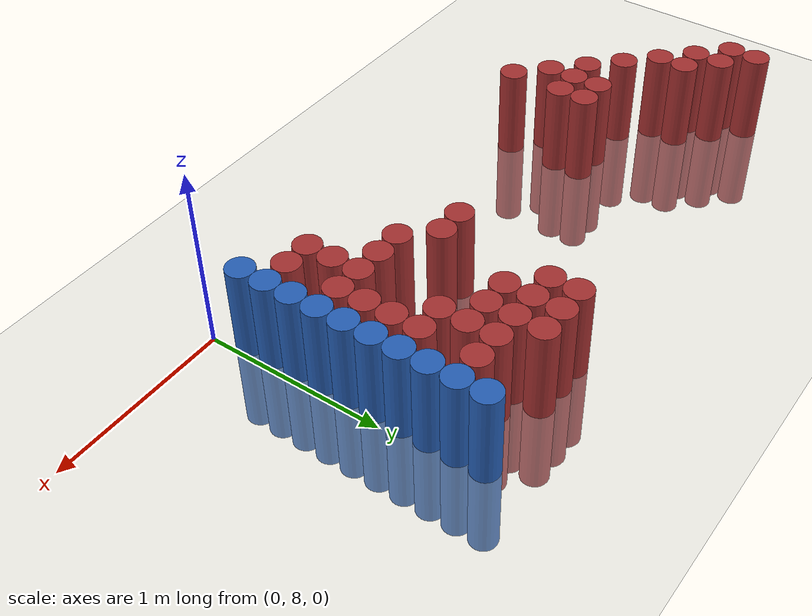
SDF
<sdf version="1.6">
 <world name="default">
  <model name="ground_plane">
   <static>1</static>
   <link name="link">
    <collision name="collision">
     <geometry><plane><normal>0 0 1</normal><size>100 100</size></plane></geometry>
     <surface><friction><ode><mu>100</mu><mu2>50</mu2></ode></friction></surface>
    </collision>
    <visual name="visual">
     <cast_shadows>0</cast_shadows>
     <geometry><plane><normal>0 0 1</normal><size>100 100</size></plane></geometry>
     <material>
      <script><uri>file://media/materials/scripts/gazebo.material</uri><name>Gazebo/Grey</name></script>
     </material>
    </visual>
   </link>
  </model>
  <model name="unit_cylinder_215">
   <static>1</static>
   <pose>-3.075000 9.225000 0.000000 0.000000 0.000000 0.000000</pose>
   <link name="link">
    <inertial>
     <mass>1</mass>
     <inertia><ixx>0.145833</ixx><ixy>0</ixy><ixz>0</ixz><iyy>0.145833</iyy><iyz>0</iyz><izz>0.125</izz></inertia>
    </inertial>
    <collision name="collision">
     <geometry><cylinder><radius>0.075000</radius><length>1</length></cylinder></geometry>
    </collision>
    <visual name="visual">
     <geometry><cylinder><radius>0.075000</radius><length>1</length></cylinder></geometry>
     <material>
      <ambient>0.648000 0.192000 0.192000 1</ambient>
      <diffuse>0.648000 0.192000 0.192000 1</diffuse>
     </material>
     <material>
      <script><name>Gazebo/Grey</name><uri>file://media/materials/scripts/gazebo.material</uri></script>
     </material>
    </visual>
   </link>
  </model>
  <model name="unit_cylinder_216">
   <static>1</static>
   <pose>-3.075000 9.375000 0.000000 0.000000 0.000000 0.000000</pose>
   <link name="link">
    <inertial>
     <mass>1</mass>
     <inertia><ixx>0.145833</ixx><ixy>0</ixy><ixz>0</ixz><iyy>0.145833</iyy><iyz>0</iyz><izz>0.125</izz></inertia>
    </inertial>
    <collision name="collision">
     <geometry><cylinder><radius>0.075000</radius><length>1</length></cylinder></geometry>
    </collision>
    <visual name="visual">
     <geometry><cylinder><radius>0.075000</radius><length>1</length></cylinder></geometry>
     <material>
      <ambient>0.648000 0.192000 0.192000 1</ambient>
      <diffuse>0.648000 0.192000 0.192000 1</diffuse>
     </material>
     <material>
      <script><name>Gazebo/Grey</name><uri>file://media/materials/scripts/gazebo.material</uri></script>
     </material>
    </visual>
   </link>
  </model>
  <model name="unit_cylinder_217">
   <static>1</static>
   <pose>-2.925000 9.075000 0.000000 0.000000 0.000000 0.000000</pose>
   <link name="link">
    <inertial>
     <mass>1</mass>
     <inertia><ixx>0.145833</ixx><ixy>0</ixy><ixz>0</ixz><iyy>0.145833</iyy><iyz>0</iyz><izz>0.125</izz></inertia>
    </inertial>
    <collision name="collision">
     <geometry><cylinder><radius>0.075000</radius><length>1</length></cylinder></geometry>
    </collision>
    <visual name="visual">
     <geometry><cylinder><radius>0.075000</radius><length>1</length></cylinder></geometry>
     <material>
      <ambient>0.648000 0.192000 0.192000 1</ambient>
      <diffuse>0.648000 0.192000 0.192000 1</diffuse>
     </material>
     <material>
      <script><name>Gazebo/Grey</name><uri>file://media/materials/scripts/gazebo.material</uri></script>
     </material>
    </visual>
   </link>
  </model>
  <model name="unit_cylinder_218">
   <static>1</static>
   <pose>-2.925000 9.225000 0.000000 0.000000 0.000000 0.000000</pose>
   <link name="link">
    <inertial>
     <mass>1</mass>
     <inertia><ixx>0.145833</ixx><ixy>0</ixy><ixz>0</ixz><iyy>0.145833</iyy><iyz>0</iyz><izz>0.125</izz></inertia>
    </inertial>
    <collision name="collision">
     <geometry><cylinder><radius>0.075000</radius><length>1</length></cylinder></geometry>
    </collision>
    <visual name="visual">
     <geometry><cylinder><radius>0.075000</radius><length>1</length></cylinder></geometry>
     <material>
      <ambient>0.648000 0.192000 0.192000 1</ambient>
      <diffuse>0.648000 0.192000 0.192000 1</diffuse>
     </material>
     <material>
      <script><name>Gazebo/Grey</name><uri>file://media/materials/scripts/gazebo.material</uri></script>
     </material>
    </visual>
   </link>
  </model>
  <model name="unit_cylinder_220">
   <static>1</static>
   <pose>-2.775000 8.925000 0.000000 0.000000 0.000000 0.000000</pose>
   <link name="link">
    <inertial>
     <mass>1</mass>
     <inertia><ixx>0.145833</ixx><ixy>0</ixy><ixz>0</ixz><iyy>0.145833</iyy><iyz>0</iyz><izz>0.125</izz></inertia>
    </inertial>
    <collision name="collision">
     <geometry><cylinder><radius>0.075000</radius><length>1</length></cylinder></geometry>
    </collision>
    <visual name="visual">
     <geometry><cylinder><radius>0.075000</radius><length>1</length></cylinder></geometry>
     <material>
      <ambient>0.648000 0.192000 0.192000 1</ambient>
      <diffuse>0.648000 0.192000 0.192000 1</diffuse>
     </material>
     <material>
      <script><name>Gazebo/Grey</name><uri>file://media/materials/scripts/gazebo.material</uri></script>
     </material>
    </visual>
   </link>
  </model>
  <model name="unit_cylinder_221">
   <static>1</static>
   <pose>-2.775000 9.075000 0.000000 0.000000 0.000000 0.000000</pose>
   <link name="link">
    <inertial>
     <mass>1</mass>
     <inertia><ixx>0.145833</ixx><ixy>0</ixy><ixz>0</ixz><iyy>0.145833</iyy><iyz>0</iyz><izz>0.125</izz></inertia>
    </inertial>
    <collision name="collision">
     <geometry><cylinder><radius>0.075000</radius><length>1</length></cylinder></geometry>
    </collision>
    <visual name="visual">
     <geometry><cylinder><radius>0.075000</radius><length>1</length></cylinder></geometry>
     <material>
      <ambient>0.648000 0.192000 0.192000 1</ambient>
      <diffuse>0.648000 0.192000 0.192000 1</diffuse>
     </material>
     <material>
      <script><name>Gazebo/Grey</name><uri>file://media/materials/scripts/gazebo.material</uri></script>
     </material>
    </visual>
   </link>
  </model>
  <model name="unit_cylinder_225">
   <static>1</static>
   <pose>-2.625000 8.775000 0.000000 0.000000 0.000000 0.000000</pose>
   <link name="link">
    <inertial>
     <mass>1</mass>
     <inertia><ixx>0.145833</ixx><ixy>0</ixy><ixz>0</ixz><iyy>0.145833</iyy><iyz>0</iyz><izz>0.125</izz></inertia>
    </inertial>
    <collision name="collision">
     <geometry><cylinder><radius>0.075000</radius><length>1</length></cylinder></geometry>
    </collision>
    <visual name="visual">
     <geometry><cylinder><radius>0.075000</radius><length>1</length></cylinder></geometry>
     <material>
      <ambient>0.648000 0.192000 0.192000 1</ambient>
      <diffuse>0.648000 0.192000 0.192000 1</diffuse>
     </material>
     <material>
      <script><name>Gazebo/Grey</name><uri>file://media/materials/scripts/gazebo.material</uri></script>
     </material>
    </visual>
   </link>
  </model>
  <model name="unit_cylinder_229">
   <static>1</static>
   <pose>-2.475000 8.625000 0.000000 0.000000 0.000000 0.000000</pose>
   <link name="link">
    <inertial>
     <mass>1</mass>
     <inertia><ixx>0.145833</ixx><ixy>0</ixy><ixz>0</ixz><iyy>0.145833</iyy><iyz>0</iyz><izz>0.125</izz></inertia>
    </inertial>
    <collision name="collision">
     <geometry><cylinder><radius>0.075000</radius><length>1</length></cylinder></geometry>
    </collision>
    <visual name="visual">
     <geometry><cylinder><radius>0.075000</radius><length>1</length></cylinder></geometry>
     <material>
      <ambient>0.648000 0.192000 0.192000 1</ambient>
      <diffuse>0.648000 0.192000 0.192000 1</diffuse>
     </material>
     <material>
      <script><name>Gazebo/Grey</name><uri>file://media/materials/scripts/gazebo.material</uri></script>
     </material>
    </visual>
   </link>
  </model>
  <model name="unit_cylinder_230">
   <static>1</static>
   <pose>-2.325000 8.475000 0.000000 0.000000 0.000000 0.000000</pose>
   <link name="link">
    <inertial>
     <mass>1</mass>
     <inertia><ixx>0.145833</ixx><ixy>0</ixy><ixz>0</ixz><iyy>0.145833</iyy><iyz>0</iyz><izz>0.125</izz></inertia>
    </inertial>
    <collision name="collision">
     <geometry><cylinder><radius>0.075000</radius><length>1</length></cylinder></geometry>
    </collision>
    <visual name="visual">
     <geometry><cylinder><radius>0.075000</radius><length>1</length></cylinder></geometry>
     <material>
      <ambient>0.648000 0.192000 0.192000 1</ambient>
      <diffuse>0.648000 0.192000 0.192000 1</diffuse>
     </material>
     <material>
      <script><name>Gazebo/Grey</name><uri>file://media/materials/scripts/gazebo.material</uri></script>
     </material>
    </visual>
   </link>
  </model>
  <model name="unit_cylinder_231">
   <static>1</static>
   <pose>-2.325000 8.625000 0.000000 0.000000 0.000000 0.000000</pose>
   <link name="link">
    <inertial>
     <mass>1</mass>
     <inertia><ixx>0.145833</ixx><ixy>0</ixy><ixz>0</ixz><iyy>0.145833</iyy><iyz>0</iyz><izz>0.125</izz></inertia>
    </inertial>
    <collision name="collision">
     <geometry><cylinder><radius>0.075000</radius><length>1</length></cylinder></geometry>
    </collision>
    <visual name="visual">
     <geometry><cylinder><radius>0.075000</radius><length>1</length></cylinder></geometry>
     <material>
      <ambient>0.648000 0.192000 0.192000 1</ambient>
      <diffuse>0.648000 0.192000 0.192000 1</diffuse>
     </material>
     <material>
      <script><name>Gazebo/Grey</name><uri>file://media/materials/scripts/gazebo.material</uri></script>
     </material>
    </visual>
   </link>
  </model>
  <model name="unit_cylinder_232">
   <static>1</static>
   <pose>-2.325000 8.775000 0.000000 0.000000 0.000000 0.000000</pose>
   <link name="link">
    <inertial>
     <mass>1</mass>
     <inertia><ixx>0.145833</ixx><ixy>0</ixy><ixz>0</ixz><iyy>0.145833</iyy><iyz>0</iyz><izz>0.125</izz></inertia>
    </inertial>
    <collision name="collision">
     <geometry><cylinder><radius>0.075000</radius><length>1</length></cylinder></geometry>
    </collision>
    <visual name="visual">
     <geometry><cylinder><radius>0.075000</radius><length>1</length></cylinder></geometry>
     <material>
      <ambient>0.648000 0.192000 0.192000 1</ambient>
      <diffuse>0.648000 0.192000 0.192000 1</diffuse>
     </material>
     <material>
      <script><name>Gazebo/Grey</name><uri>file://media/materials/scripts/gazebo.material</uri></script>
     </material>
    </visual>
   </link>
  </model>
  <model name="unit_cylinder_233">
   <static>1</static>
   <pose>-2.175000 8.325000 0.000000 0.000000 0.000000 0.000000</pose>
   <link name="link">
    <inertial>
     <mass>1</mass>
     <inertia><ixx>0.145833</ixx><ixy>0</ixy><ixz>0</ixz><iyy>0.145833</iyy><iyz>0</iyz><izz>0.125</izz></inertia>
    </inertial>
    <collision name="collision">
     <geometry><cylinder><radius>0.075000</radius><length>1</length></cylinder></geometry>
    </collision>
    <visual name="visual">
     <geometry><cylinder><radius>0.075000</radius><length>1</length></cylinder></geometry>
     <material>
      <ambient>0.648000 0.192000 0.192000 1</ambient>
      <diffuse>0.648000 0.192000 0.192000 1</diffuse>
     </material>
     <material>
      <script><name>Gazebo/Grey</name><uri>file://media/materials/scripts/gazebo.material</uri></script>
     </material>
    </visual>
   </link>
  </model>
  <model name="unit_cylinder_234">
   <static>1</static>
   <pose>-2.175000 8.625000 0.000000 0.000000 0.000000 0.000000</pose>
   <link name="link">
    <inertial>
     <mass>1</mass>
     <inertia><ixx>0.145833</ixx><ixy>0</ixy><ixz>0</ixz><iyy>0.145833</iyy><iyz>0</iyz><izz>0.125</izz></inertia>
    </inertial>
    <collision name="collision">
     <geometry><cylinder><radius>0.075000</radius><length>1</length></cylinder></geometry>
    </collision>
    <visual name="visual">
     <geometry><cylinder><radius>0.075000</radius><length>1</length></cylinder></geometry>
     <material>
      <ambient>0.648000 0.192000 0.192000 1</ambient>
      <diffuse>0.648000 0.192000 0.192000 1</diffuse>
     </material>
     <material>
      <script><name>Gazebo/Grey</name><uri>file://media/materials/scripts/gazebo.material</uri></script>
     </material>
    </visual>
   </link>
  </model>
  <model name="unit_cylinder_235">
   <static>1</static>
   <pose>-2.175000 8.775000 0.000000 0.000000 0.000000 0.000000</pose>
   <link name="link">
    <inertial>
     <mass>1</mass>
     <inertia><ixx>0.145833</ixx><ixy>0</ixy><ixz>0</ixz><iyy>0.145833</iyy><iyz>0</iyz><izz>0.125</izz></inertia>
    </inertial>
    <collision name="collision">
     <geometry><cylinder><radius>0.075000</radius><length>1</length></cylinder></geometry>
    </collision>
    <visual name="visual">
     <geometry><cylinder><radius>0.075000</radius><length>1</length></cylinder></geometry>
     <material>
      <ambient>0.648000 0.192000 0.192000 1</ambient>
      <diffuse>0.648000 0.192000 0.192000 1</diffuse>
     </material>
     <material>
      <script><name>Gazebo/Grey</name><uri>file://media/materials/scripts/gazebo.material</uri></script>
     </material>
    </visual>
   </link>
  </model>
  <model name="unit_cylinder_254">
   <static>1</static>
   <pose>-0.975000 8.775000 0.000000 0.000000 0.000000 0.000000</pose>
   <link name="link">
    <inertial>
     <mass>1</mass>
     <inertia><ixx>0.145833</ixx><ixy>0</ixy><ixz>0</ixz><iyy>0.145833</iyy><iyz>0</iyz><izz>0.125</izz></inertia>
    </inertial>
    <collision name="collision">
     <geometry><cylinder><radius>0.075000</radius><length>1</length></cylinder></geometry>
    </collision>
    <visual name="visual">
     <geometry><cylinder><radius>0.075000</radius><length>1</length></cylinder></geometry>
     <material>
      <ambient>0.648000 0.192000 0.192000 1</ambient>
      <diffuse>0.648000 0.192000 0.192000 1</diffuse>
     </material>
     <material>
      <script><name>Gazebo/Grey</name><uri>file://media/materials/scripts/gazebo.material</uri></script>
     </material>
    </visual>
   </link>
  </model>
  <model name="unit_cylinder_262">
   <static>1</static>
   <pose>-0.825000 8.775000 0.000000 0.000000 0.000000 0.000000</pose>
   <link name="link">
    <inertial>
     <mass>1</mass>
     <inertia><ixx>0.145833</ixx><ixy>0</ixy><ixz>0</ixz><iyy>0.145833</iyy><iyz>0</iyz><izz>0.125</izz></inertia>
    </inertial>
    <collision name="collision">
     <geometry><cylinder><radius>0.075000</radius><length>1</length></cylinder></geometry>
    </collision>
    <visual name="visual">
     <geometry><cylinder><radius>0.075000</radius><length>1</length></cylinder></geometry>
     <material>
      <ambient>0.648000 0.192000 0.192000 1</ambient>
      <diffuse>0.648000 0.192000 0.192000 1</diffuse>
     </material>
     <material>
      <script><name>Gazebo/Grey</name><uri>file://media/materials/scripts/gazebo.material</uri></script>
     </material>
    </visual>
   </link>
  </model>
  <model name="unit_cylinder_263">
   <static>1</static>
   <pose>-0.825000 9.375000 0.000000 0.000000 0.000000 0.000000</pose>
   <link name="link">
    <inertial>
     <mass>1</mass>
     <inertia><ixx>0.145833</ixx><ixy>0</ixy><ixz>0</ixz><iyy>0.145833</iyy><iyz>0</iyz><izz>0.125</izz></inertia>
    </inertial>
    <collision name="collision">
     <geometry><cylinder><radius>0.075000</radius><length>1</length></cylinder></geometry>
    </collision>
    <visual name="visual">
     <geometry><cylinder><radius>0.075000</radius><length>1</length></cylinder></geometry>
     <material>
      <ambient>0.648000 0.192000 0.192000 1</ambient>
      <diffuse>0.648000 0.192000 0.192000 1</diffuse>
     </material>
     <material>
      <script><name>Gazebo/Grey</name><uri>file://media/materials/scripts/gazebo.material</uri></script>
     </material>
    </visual>
   </link>
  </model>
  <model name="unit_cylinder_264">
   <static>1</static>
   <pose>-0.825000 9.525000 0.000000 0.000000 0.000000 0.000000</pose>
   <link name="link">
    <inertial>
     <mass>1</mass>
     <inertia><ixx>0.145833</ixx><ixy>0</ixy><ixz>0</ixz><iyy>0.145833</iyy><iyz>0</iyz><izz>0.125</izz></inertia>
    </inertial>
    <collision name="collision">
     <geometry><cylinder><radius>0.075000</radius><length>1</length></cylinder></geometry>
    </collision>
    <visual name="visual">
     <geometry><cylinder><radius>0.075000</radius><length>1</length></cylinder></geometry>
     <material>
      <ambient>0.648000 0.192000 0.192000 1</ambient>
      <diffuse>0.648000 0.192000 0.192000 1</diffuse>
     </material>
     <material>
      <script><name>Gazebo/Grey</name><uri>file://media/materials/scripts/gazebo.material</uri></script>
     </material>
    </visual>
   </link>
  </model>
  <model name="unit_cylinder_271">
   <static>1</static>
   <pose>-0.675000 8.625000 0.000000 0.000000 0.000000 0.000000</pose>
   <link name="link">
    <inertial>
     <mass>1</mass>
     <inertia><ixx>0.145833</ixx><ixy>0</ixy><ixz>0</ixz><iyy>0.145833</iyy><iyz>0</iyz><izz>0.125</izz></inertia>
    </inertial>
    <collision name="collision">
     <geometry><cylinder><radius>0.075000</radius><length>1</length></cylinder></geometry>
    </collision>
    <visual name="visual">
     <geometry><cylinder><radius>0.075000</radius><length>1</length></cylinder></geometry>
     <material>
      <ambient>0.648000 0.192000 0.192000 1</ambient>
      <diffuse>0.648000 0.192000 0.192000 1</diffuse>
     </material>
     <material>
      <script><name>Gazebo/Grey</name><uri>file://media/materials/scripts/gazebo.material</uri></script>
     </material>
    </visual>
   </link>
  </model>
  <model name="unit_cylinder_272">
   <static>1</static>
   <pose>-0.675000 9.225000 0.000000 0.000000 0.000000 0.000000</pose>
   <link name="link">
    <inertial>
     <mass>1</mass>
     <inertia><ixx>0.145833</ixx><ixy>0</ixy><ixz>0</ixz><iyy>0.145833</iyy><iyz>0</iyz><izz>0.125</izz></inertia>
    </inertial>
    <collision name="collision">
     <geometry><cylinder><radius>0.075000</radius><length>1</length></cylinder></geometry>
    </collision>
    <visual name="visual">
     <geometry><cylinder><radius>0.075000</radius><length>1</length></cylinder></geometry>
     <material>
      <ambient>0.648000 0.192000 0.192000 1</ambient>
      <diffuse>0.648000 0.192000 0.192000 1</diffuse>
     </material>
     <material>
      <script><name>Gazebo/Grey</name><uri>file://media/materials/scripts/gazebo.material</uri></script>
     </material>
    </visual>
   </link>
  </model>
  <model name="unit_cylinder_273">
   <static>1</static>
   <pose>-0.675000 9.375000 0.000000 0.000000 0.000000 0.000000</pose>
   <link name="link">
    <inertial>
     <mass>1</mass>
     <inertia><ixx>0.145833</ixx><ixy>0</ixy><ixz>0</ixz><iyy>0.145833</iyy><iyz>0</iyz><izz>0.125</izz></inertia>
    </inertial>
    <collision name="collision">
     <geometry><cylinder><radius>0.075000</radius><length>1</length></cylinder></geometry>
    </collision>
    <visual name="visual">
     <geometry><cylinder><radius>0.075000</radius><length>1</length></cylinder></geometry>
     <material>
      <ambient>0.648000 0.192000 0.192000 1</ambient>
      <diffuse>0.648000 0.192000 0.192000 1</diffuse>
     </material>
     <material>
      <script><name>Gazebo/Grey</name><uri>file://media/materials/scripts/gazebo.material</uri></script>
     </material>
    </visual>
   </link>
  </model>
  <model name="unit_cylinder_274">
   <static>1</static>
   <pose>-0.675000 9.525000 0.000000 0.000000 0.000000 0.000000</pose>
   <link name="link">
    <inertial>
     <mass>1</mass>
     <inertia><ixx>0.145833</ixx><ixy>0</ixy><ixz>0</ixz><iyy>0.145833</iyy><iyz>0</iyz><izz>0.125</izz></inertia>
    </inertial>
    <collision name="collision">
     <geometry><cylinder><radius>0.075000</radius><length>1</length></cylinder></geometry>
    </collision>
    <visual name="visual">
     <geometry><cylinder><radius>0.075000</radius><length>1</length></cylinder></geometry>
     <material>
      <ambient>0.648000 0.192000 0.192000 1</ambient>
      <diffuse>0.648000 0.192000 0.192000 1</diffuse>
     </material>
     <material>
      <script><name>Gazebo/Grey</name><uri>file://media/materials/scripts/gazebo.material</uri></script>
     </material>
    </visual>
   </link>
  </model>
  <model name="unit_cylinder_278">
   <static>1</static>
   <pose>-0.525000 8.625000 0.000000 0.000000 0.000000 0.000000</pose>
   <link name="link">
    <inertial>
     <mass>1</mass>
     <inertia><ixx>0.145833</ixx><ixy>0</ixy><ixz>0</ixz><iyy>0.145833</iyy><iyz>0</iyz><izz>0.125</izz></inertia>
    </inertial>
    <collision name="collision">
     <geometry><cylinder><radius>0.075000</radius><length>1</length></cylinder></geometry>
    </collision>
    <visual name="visual">
     <geometry><cylinder><radius>0.075000</radius><length>1</length></cylinder></geometry>
     <material>
      <ambient>0.648000 0.192000 0.192000 1</ambient>
      <diffuse>0.648000 0.192000 0.192000 1</diffuse>
     </material>
     <material>
      <script><name>Gazebo/Grey</name><uri>file://media/materials/scripts/gazebo.material</uri></script>
     </material>
    </visual>
   </link>
  </model>
  <model name="unit_cylinder_279">
   <static>1</static>
   <pose>-0.525000 9.225000 0.000000 0.000000 0.000000 0.000000</pose>
   <link name="link">
    <inertial>
     <mass>1</mass>
     <inertia><ixx>0.145833</ixx><ixy>0</ixy><ixz>0</ixz><iyy>0.145833</iyy><iyz>0</iyz><izz>0.125</izz></inertia>
    </inertial>
    <collision name="collision">
     <geometry><cylinder><radius>0.075000</radius><length>1</length></cylinder></geometry>
    </collision>
    <visual name="visual">
     <geometry><cylinder><radius>0.075000</radius><length>1</length></cylinder></geometry>
     <material>
      <ambient>0.648000 0.192000 0.192000 1</ambient>
      <diffuse>0.648000 0.192000 0.192000 1</diffuse>
     </material>
     <material>
      <script><name>Gazebo/Grey</name><uri>file://media/materials/scripts/gazebo.material</uri></script>
     </material>
    </visual>
   </link>
  </model>
  <model name="unit_cylinder_280">
   <static>1</static>
   <pose>-0.525000 9.375000 0.000000 0.000000 0.000000 0.000000</pose>
   <link name="link">
    <inertial>
     <mass>1</mass>
     <inertia><ixx>0.145833</ixx><ixy>0</ixy><ixz>0</ixz><iyy>0.145833</iyy><iyz>0</iyz><izz>0.125</izz></inertia>
    </inertial>
    <collision name="collision">
     <geometry><cylinder><radius>0.075000</radius><length>1</length></cylinder></geometry>
    </collision>
    <visual name="visual">
     <geometry><cylinder><radius>0.075000</radius><length>1</length></cylinder></geometry>
     <material>
      <ambient>0.648000 0.192000 0.192000 1</ambient>
      <diffuse>0.648000 0.192000 0.192000 1</diffuse>
     </material>
     <material>
      <script><name>Gazebo/Grey</name><uri>file://media/materials/scripts/gazebo.material</uri></script>
     </material>
    </visual>
   </link>
  </model>
  <model name="unit_cylinder_281">
   <static>1</static>
   <pose>-0.525000 9.525000 0.000000 0.000000 0.000000 0.000000</pose>
   <link name="link">
    <inertial>
     <mass>1</mass>
     <inertia><ixx>0.145833</ixx><ixy>0</ixy><ixz>0</ixz><iyy>0.145833</iyy><iyz>0</iyz><izz>0.125</izz></inertia>
    </inertial>
    <collision name="collision">
     <geometry><cylinder><radius>0.075000</radius><length>1</length></cylinder></geometry>
    </collision>
    <visual name="visual">
     <geometry><cylinder><radius>0.075000</radius><length>1</length></cylinder></geometry>
     <material>
      <ambient>0.648000 0.192000 0.192000 1</ambient>
      <diffuse>0.648000 0.192000 0.192000 1</diffuse>
     </material>
     <material>
      <script><name>Gazebo/Grey</name><uri>file://media/materials/scripts/gazebo.material</uri></script>
     </material>
    </visual>
   </link>
  </model>
  <model name="unit_cylinder_284">
   <static>1</static>
   <pose>-0.375000 8.325000 0.000000 0.000000 0.000000 0.000000</pose>
   <link name="link">
    <inertial>
     <mass>1</mass>
     <inertia><ixx>0.145833</ixx><ixy>0</ixy><ixz>0</ixz><iyy>0.145833</iyy><iyz>0</iyz><izz>0.125</izz></inertia>
    </inertial>
    <collision name="collision">
     <geometry><cylinder><radius>0.075000</radius><length>1</length></cylinder></geometry>
    </collision>
    <visual name="visual">
     <geometry><cylinder><radius>0.075000</radius><length>1</length></cylinder></geometry>
     <material>
      <ambient>0.648000 0.192000 0.192000 1</ambient>
      <diffuse>0.648000 0.192000 0.192000 1</diffuse>
     </material>
     <material>
      <script><name>Gazebo/Grey</name><uri>file://media/materials/scripts/gazebo.material</uri></script>
     </material>
    </visual>
   </link>
  </model>
  <model name="unit_cylinder_285">
   <static>1</static>
   <pose>-0.375000 8.475000 0.000000 0.000000 0.000000 0.000000</pose>
   <link name="link">
    <inertial>
     <mass>1</mass>
     <inertia><ixx>0.145833</ixx><ixy>0</ixy><ixz>0</ixz><iyy>0.145833</iyy><iyz>0</iyz><izz>0.125</izz></inertia>
    </inertial>
    <collision name="collision">
     <geometry><cylinder><radius>0.075000</radius><length>1</length></cylinder></geometry>
    </collision>
    <visual name="visual">
     <geometry><cylinder><radius>0.075000</radius><length>1</length></cylinder></geometry>
     <material>
      <ambient>0.648000 0.192000 0.192000 1</ambient>
      <diffuse>0.648000 0.192000 0.192000 1</diffuse>
     </material>
     <material>
      <script><name>Gazebo/Grey</name><uri>file://media/materials/scripts/gazebo.material</uri></script>
     </material>
    </visual>
   </link>
  </model>
  <model name="unit_cylinder_286">
   <static>1</static>
   <pose>-0.375000 8.625000 0.000000 0.000000 0.000000 0.000000</pose>
   <link name="link">
    <inertial>
     <mass>1</mass>
     <inertia><ixx>0.145833</ixx><ixy>0</ixy><ixz>0</ixz><iyy>0.145833</iyy><iyz>0</iyz><izz>0.125</izz></inertia>
    </inertial>
    <collision name="collision">
     <geometry><cylinder><radius>0.075000</radius><length>1</length></cylinder></geometry>
    </collision>
    <visual name="visual">
     <geometry><cylinder><radius>0.075000</radius><length>1</length></cylinder></geometry>
     <material>
      <ambient>0.648000 0.192000 0.192000 1</ambient>
      <diffuse>0.648000 0.192000 0.192000 1</diffuse>
     </material>
     <material>
      <script><name>Gazebo/Grey</name><uri>file://media/materials/scripts/gazebo.material</uri></script>
     </material>
    </visual>
   </link>
  </model>
  <model name="unit_cylinder_287">
   <static>1</static>
   <pose>-0.375000 9.075000 0.000000 0.000000 0.000000 0.000000</pose>
   <link name="link">
    <inertial>
     <mass>1</mass>
     <inertia><ixx>0.145833</ixx><ixy>0</ixy><ixz>0</ixz><iyy>0.145833</iyy><iyz>0</iyz><izz>0.125</izz></inertia>
    </inertial>
    <collision name="collision">
     <geometry><cylinder><radius>0.075000</radius><length>1</length></cylinder></geometry>
    </collision>
    <visual name="visual">
     <geometry><cylinder><radius>0.075000</radius><length>1</length></cylinder></geometry>
     <material>
      <ambient>0.648000 0.192000 0.192000 1</ambient>
      <diffuse>0.648000 0.192000 0.192000 1</diffuse>
     </material>
     <material>
      <script><name>Gazebo/Grey</name><uri>file://media/materials/scripts/gazebo.material</uri></script>
     </material>
    </visual>
   </link>
  </model>
  <model name="unit_cylinder_288">
   <static>1</static>
   <pose>-0.375000 9.225000 0.000000 0.000000 0.000000 0.000000</pose>
   <link name="link">
    <inertial>
     <mass>1</mass>
     <inertia><ixx>0.145833</ixx><ixy>0</ixy><ixz>0</ixz><iyy>0.145833</iyy><iyz>0</iyz><izz>0.125</izz></inertia>
    </inertial>
    <collision name="collision">
     <geometry><cylinder><radius>0.075000</radius><length>1</length></cylinder></geometry>
    </collision>
    <visual name="visual">
     <geometry><cylinder><radius>0.075000</radius><length>1</length></cylinder></geometry>
     <material>
      <ambient>0.648000 0.192000 0.192000 1</ambient>
      <diffuse>0.648000 0.192000 0.192000 1</diffuse>
     </material>
     <material>
      <script><name>Gazebo/Grey</name><uri>file://media/materials/scripts/gazebo.material</uri></script>
     </material>
    </visual>
   </link>
  </model>
  <model name="unit_cylinder_289">
   <static>1</static>
   <pose>-0.375000 9.375000 0.000000 0.000000 0.000000 0.000000</pose>
   <link name="link">
    <inertial>
     <mass>1</mass>
     <inertia><ixx>0.145833</ixx><ixy>0</ixy><ixz>0</ixz><iyy>0.145833</iyy><iyz>0</iyz><izz>0.125</izz></inertia>
    </inertial>
    <collision name="collision">
     <geometry><cylinder><radius>0.075000</radius><length>1</length></cylinder></geometry>
    </collision>
    <visual name="visual">
     <geometry><cylinder><radius>0.075000</radius><length>1</length></cylinder></geometry>
     <material>
      <ambient>0.648000 0.192000 0.192000 1</ambient>
      <diffuse>0.648000 0.192000 0.192000 1</diffuse>
     </material>
     <material>
      <script><name>Gazebo/Grey</name><uri>file://media/materials/scripts/gazebo.material</uri></script>
     </material>
    </visual>
   </link>
  </model>
  <model name="unit_cylinder_297">
   <static>1</static>
   <pose>-0.225000 8.325000 0.000000 0.000000 0.000000 0.000000</pose>
   <link name="link">
    <inertial>
     <mass>1</mass>
     <inertia><ixx>0.145833</ixx><ixy>0</ixy><ixz>0</ixz><iyy>0.145833</iyy><iyz>0</iyz><izz>0.125</izz></inertia>
    </inertial>
    <collision name="collision">
     <geometry><cylinder><radius>0.075000</radius><length>1</length></cylinder></geometry>
    </collision>
    <visual name="visual">
     <geometry><cylinder><radius>0.075000</radius><length>1</length></cylinder></geometry>
     <material>
      <ambient>0.648000 0.192000 0.192000 1</ambient>
      <diffuse>0.648000 0.192000 0.192000 1</diffuse>
     </material>
     <material>
      <script><name>Gazebo/Grey</name><uri>file://media/materials/scripts/gazebo.material</uri></script>
     </material>
    </visual>
   </link>
  </model>
  <model name="unit_cylinder_298">
   <static>1</static>
   <pose>-0.225000 8.625000 0.000000 0.000000 0.000000 0.000000</pose>
   <link name="link">
    <inertial>
     <mass>1</mass>
     <inertia><ixx>0.145833</ixx><ixy>0</ixy><ixz>0</ixz><iyy>0.145833</iyy><iyz>0</iyz><izz>0.125</izz></inertia>
    </inertial>
    <collision name="collision">
     <geometry><cylinder><radius>0.075000</radius><length>1</length></cylinder></geometry>
    </collision>
    <visual name="visual">
     <geometry><cylinder><radius>0.075000</radius><length>1</length></cylinder></geometry>
     <material>
      <ambient>0.648000 0.192000 0.192000 1</ambient>
      <diffuse>0.648000 0.192000 0.192000 1</diffuse>
     </material>
     <material>
      <script><name>Gazebo/Grey</name><uri>file://media/materials/scripts/gazebo.material</uri></script>
     </material>
    </visual>
   </link>
  </model>
  <model name="unit_cylinder_299">
   <static>1</static>
   <pose>-0.225000 8.775000 0.000000 0.000000 0.000000 0.000000</pose>
   <link name="link">
    <inertial>
     <mass>1</mass>
     <inertia><ixx>0.145833</ixx><ixy>0</ixy><ixz>0</ixz><iyy>0.145833</iyy><iyz>0</iyz><izz>0.125</izz></inertia>
    </inertial>
    <collision name="collision">
     <geometry><cylinder><radius>0.075000</radius><length>1</length></cylinder></geometry>
    </collision>
    <visual name="visual">
     <geometry><cylinder><radius>0.075000</radius><length>1</length></cylinder></geometry>
     <material>
      <ambient>0.648000 0.192000 0.192000 1</ambient>
      <diffuse>0.648000 0.192000 0.192000 1</diffuse>
     </material>
     <material>
      <script><name>Gazebo/Grey</name><uri>file://media/materials/scripts/gazebo.material</uri></script>
     </material>
    </visual>
   </link>
  </model>
  <model name="unit_cylinder_300">
   <static>1</static>
   <pose>-0.225000 8.925000 0.000000 0.000000 0.000000 0.000000</pose>
   <link name="link">
    <inertial>
     <mass>1</mass>
     <inertia><ixx>0.145833</ixx><ixy>0</ixy><ixz>0</ixz><iyy>0.145833</iyy><iyz>0</iyz><izz>0.125</izz></inertia>
    </inertial>
    <collision name="collision">
     <geometry><cylinder><radius>0.075000</radius><length>1</length></cylinder></geometry>
    </collision>
    <visual name="visual">
     <geometry><cylinder><radius>0.075000</radius><length>1</length></cylinder></geometry>
     <material>
      <ambient>0.648000 0.192000 0.192000 1</ambient>
      <diffuse>0.648000 0.192000 0.192000 1</diffuse>
     </material>
     <material>
      <script><name>Gazebo/Grey</name><uri>file://media/materials/scripts/gazebo.material</uri></script>
     </material>
    </visual>
   </link>
  </model>
  <model name="unit_cylinder_301">
   <static>1</static>
   <pose>-0.225000 9.075000 0.000000 0.000000 0.000000 0.000000</pose>
   <link name="link">
    <inertial>
     <mass>1</mass>
     <inertia><ixx>0.145833</ixx><ixy>0</ixy><ixz>0</ixz><iyy>0.145833</iyy><iyz>0</iyz><izz>0.125</izz></inertia>
    </inertial>
    <collision name="collision">
     <geometry><cylinder><radius>0.075000</radius><length>1</length></cylinder></geometry>
    </collision>
    <visual name="visual">
     <geometry><cylinder><radius>0.075000</radius><length>1</length></cylinder></geometry>
     <material>
      <ambient>0.648000 0.192000 0.192000 1</ambient>
      <diffuse>0.648000 0.192000 0.192000 1</diffuse>
     </material>
     <material>
      <script><name>Gazebo/Grey</name><uri>file://media/materials/scripts/gazebo.material</uri></script>
     </material>
    </visual>
   </link>
  </model>
  <model name="unit_cylinder_302">
   <static>1</static>
   <pose>-0.225000 9.375000 0.000000 0.000000 0.000000 0.000000</pose>
   <link name="link">
    <inertial>
     <mass>1</mass>
     <inertia><ixx>0.145833</ixx><ixy>0</ixy><ixz>0</ixz><iyy>0.145833</iyy><iyz>0</iyz><izz>0.125</izz></inertia>
    </inertial>
    <collision name="collision">
     <geometry><cylinder><radius>0.075000</radius><length>1</length></cylinder></geometry>
    </collision>
    <visual name="visual">
     <geometry><cylinder><radius>0.075000</radius><length>1</length></cylinder></geometry>
     <material>
      <ambient>0.648000 0.192000 0.192000 1</ambient>
      <diffuse>0.648000 0.192000 0.192000 1</diffuse>
     </material>
     <material>
      <script><name>Gazebo/Grey</name><uri>file://media/materials/scripts/gazebo.material</uri></script>
     </material>
    </visual>
   </link>
  </model>
  <model name="unit_cylinder_323">
   <static>1</static>
   <pose>-0.075000 8.175000 0.000000 0.000000 0.000000 0.000000</pose>
   <link name="link">
    <inertial>
     <mass>1</mass>
     <inertia><ixx>0.145833</ixx><ixy>0</ixy><ixz>0</ixz><iyy>0.145833</iyy><iyz>0</iyz><izz>0.125</izz></inertia>
    </inertial>
    <collision name="collision">
     <geometry><cylinder><radius>0.075000</radius><length>1</length></cylinder></geometry>
    </collision>
    <visual name="visual">
     <geometry><cylinder><radius>0.075000</radius><length>1</length></cylinder></geometry>
     <material>
      <ambient>0.152000 0.379000 0.720000 1</ambient>
      <diffuse>0.152000 0.379000 0.720000 1</diffuse>
     </material>
     <material>
      <script><name>Gazebo/Grey</name><uri>file://media/materials/scripts/gazebo.material</uri></script>
     </material>
    </visual>
   </link>
  </model>
  <model name="unit_cylinder_324">
   <static>1</static>
   <pose>-0.075000 8.325000 0.000000 0.000000 0.000000 0.000000</pose>
   <link name="link">
    <inertial>
     <mass>1</mass>
     <inertia><ixx>0.145833</ixx><ixy>0</ixy><ixz>0</ixz><iyy>0.145833</iyy><iyz>0</iyz><izz>0.125</izz></inertia>
    </inertial>
    <collision name="collision">
     <geometry><cylinder><radius>0.075000</radius><length>1</length></cylinder></geometry>
    </collision>
    <visual name="visual">
     <geometry><cylinder><radius>0.075000</radius><length>1</length></cylinder></geometry>
     <material>
      <ambient>0.152000 0.379000 0.720000 1</ambient>
      <diffuse>0.152000 0.379000 0.720000 1</diffuse>
     </material>
     <material>
      <script><name>Gazebo/Grey</name><uri>file://media/materials/scripts/gazebo.material</uri></script>
     </material>
    </visual>
   </link>
  </model>
  <model name="unit_cylinder_325">
   <static>1</static>
   <pose>-0.075000 8.475000 0.000000 0.000000 0.000000 0.000000</pose>
   <link name="link">
    <inertial>
     <mass>1</mass>
     <inertia><ixx>0.145833</ixx><ixy>0</ixy><ixz>0</ixz><iyy>0.145833</iyy><iyz>0</iyz><izz>0.125</izz></inertia>
    </inertial>
    <collision name="collision">
     <geometry><cylinder><radius>0.075000</radius><length>1</length></cylinder></geometry>
    </collision>
    <visual name="visual">
     <geometry><cylinder><radius>0.075000</radius><length>1</length></cylinder></geometry>
     <material>
      <ambient>0.152000 0.379000 0.720000 1</ambient>
      <diffuse>0.152000 0.379000 0.720000 1</diffuse>
     </material>
     <material>
      <script><name>Gazebo/Grey</name><uri>file://media/materials/scripts/gazebo.material</uri></script>
     </material>
    </visual>
   </link>
  </model>
  <model name="unit_cylinder_326">
   <static>1</static>
   <pose>-0.075000 8.625000 0.000000 0.000000 0.000000 0.000000</pose>
   <link name="link">
    <inertial>
     <mass>1</mass>
     <inertia><ixx>0.145833</ixx><ixy>0</ixy><ixz>0</ixz><iyy>0.145833</iyy><iyz>0</iyz><izz>0.125</izz></inertia>
    </inertial>
    <collision name="collision">
     <geometry><cylinder><radius>0.075000</radius><length>1</length></cylinder></geometry>
    </collision>
    <visual name="visual">
     <geometry><cylinder><radius>0.075000</radius><length>1</length></cylinder></geometry>
     <material>
      <ambient>0.152000 0.379000 0.720000 1</ambient>
      <diffuse>0.152000 0.379000 0.720000 1</diffuse>
     </material>
     <material>
      <script><name>Gazebo/Grey</name><uri>file://media/materials/scripts/gazebo.material</uri></script>
     </material>
    </visual>
   </link>
  </model>
  <model name="unit_cylinder_327">
   <static>1</static>
   <pose>-0.075000 8.775000 0.000000 0.000000 0.000000 0.000000</pose>
   <link name="link">
    <inertial>
     <mass>1</mass>
     <inertia><ixx>0.145833</ixx><ixy>0</ixy><ixz>0</ixz><iyy>0.145833</iyy><iyz>0</iyz><izz>0.125</izz></inertia>
    </inertial>
    <collision name="collision">
     <geometry><cylinder><radius>0.075000</radius><length>1</length></cylinder></geometry>
    </collision>
    <visual name="visual">
     <geometry><cylinder><radius>0.075000</radius><length>1</length></cylinder></geometry>
     <material>
      <ambient>0.152000 0.379000 0.720000 1</ambient>
      <diffuse>0.152000 0.379000 0.720000 1</diffuse>
     </material>
     <material>
      <script><name>Gazebo/Grey</name><uri>file://media/materials/scripts/gazebo.material</uri></script>
     </material>
    </visual>
   </link>
  </model>
  <model name="unit_cylinder_328">
   <static>1</static>
   <pose>-0.075000 8.925000 0.000000 0.000000 0.000000 0.000000</pose>
   <link name="link">
    <inertial>
     <mass>1</mass>
     <inertia><ixx>0.145833</ixx><ixy>0</ixy><ixz>0</ixz><iyy>0.145833</iyy><iyz>0</iyz><izz>0.125</izz></inertia>
    </inertial>
    <collision name="collision">
     <geometry><cylinder><radius>0.075000</radius><length>1</length></cylinder></geometry>
    </collision>
    <visual name="visual">
     <geometry><cylinder><radius>0.075000</radius><length>1</length></cylinder></geometry>
     <material>
      <ambient>0.152000 0.379000 0.720000 1</ambient>
      <diffuse>0.152000 0.379000 0.720000 1</diffuse>
     </material>
     <material>
      <script><name>Gazebo/Grey</name><uri>file://media/materials/scripts/gazebo.material</uri></script>
     </material>
    </visual>
   </link>
  </model>
  <model name="unit_cylinder_329">
   <static>1</static>
   <pose>-0.075000 9.075000 0.000000 0.000000 0.000000 0.000000</pose>
   <link name="link">
    <inertial>
     <mass>1</mass>
     <inertia><ixx>0.145833</ixx><ixy>0</ixy><ixz>0</ixz><iyy>0.145833</iyy><iyz>0</iyz><izz>0.125</izz></inertia>
    </inertial>
    <collision name="collision">
     <geometry><cylinder><radius>0.075000</radius><length>1</length></cylinder></geometry>
    </collision>
    <visual name="visual">
     <geometry><cylinder><radius>0.075000</radius><length>1</length></cylinder></geometry>
     <material>
      <ambient>0.152000 0.379000 0.720000 1</ambient>
      <diffuse>0.152000 0.379000 0.720000 1</diffuse>
     </material>
     <material>
      <script><name>Gazebo/Grey</name><uri>file://media/materials/scripts/gazebo.material</uri></script>
     </material>
    </visual>
   </link>
  </model>
  <model name="unit_cylinder_330">
   <static>1</static>
   <pose>-0.075000 9.225000 0.000000 0.000000 0.000000 0.000000</pose>
   <link name="link">
    <inertial>
     <mass>1</mass>
     <inertia><ixx>0.145833</ixx><ixy>0</ixy><ixz>0</ixz><iyy>0.145833</iyy><iyz>0</iyz><izz>0.125</izz></inertia>
    </inertial>
    <collision name="collision">
     <geometry><cylinder><radius>0.075000</radius><length>1</length></cylinder></geometry>
    </collision>
    <visual name="visual">
     <geometry><cylinder><radius>0.075000</radius><length>1</length></cylinder></geometry>
     <material>
      <ambient>0.152000 0.379000 0.720000 1</ambient>
      <diffuse>0.152000 0.379000 0.720000 1</diffuse>
     </material>
     <material>
      <script><name>Gazebo/Grey</name><uri>file://media/materials/scripts/gazebo.material</uri></script>
     </material>
    </visual>
   </link>
  </model>
  <model name="unit_cylinder_331">
   <static>1</static>
   <pose>-0.075000 9.375000 0.000000 0.000000 0.000000 0.000000</pose>
   <link name="link">
    <inertial>
     <mass>1</mass>
     <inertia><ixx>0.145833</ixx><ixy>0</ixy><ixz>0</ixz><iyy>0.145833</iyy><iyz>0</iyz><izz>0.125</izz></inertia>
    </inertial>
    <collision name="collision">
     <geometry><cylinder><radius>0.075000</radius><length>1</length></cylinder></geometry>
    </collision>
    <visual name="visual">
     <geometry><cylinder><radius>0.075000</radius><length>1</length></cylinder></geometry>
     <material>
      <ambient>0.152000 0.379000 0.720000 1</ambient>
      <diffuse>0.152000 0.379000 0.720000 1</diffuse>
     </material>
     <material>
      <script><name>Gazebo/Grey</name><uri>file://media/materials/scripts/gazebo.material</uri></script>
     </material>
    </visual>
   </link>
  </model>
  <model name="unit_cylinder_332">
   <static>1</static>
   <pose>-0.075000 9.525000 0.000000 0.000000 0.000000 0.000000</pose>
   <link name="link">
    <inertial>
     <mass>1</mass>
     <inertia><ixx>0.145833</ixx><ixy>0</ixy><ixz>0</ixz><iyy>0.145833</iyy><iyz>0</iyz><izz>0.125</izz></inertia>
    </inertial>
    <collision name="collision">
     <geometry><cylinder><radius>0.075000</radius><length>1</length></cylinder></geometry>
    </collision>
    <visual name="visual">
     <geometry><cylinder><radius>0.075000</radius><length>1</length></cylinder></geometry>
     <material>
      <ambient>0.152000 0.379000 0.720000 1</ambient>
      <diffuse>0.152000 0.379000 0.720000 1</diffuse>
     </material>
     <material>
      <script><name>Gazebo/Grey</name><uri>file://media/materials/scripts/gazebo.material</uri></script>
     </material>
    </visual>
   </link>
  </model>
 </world>
</sdf>
